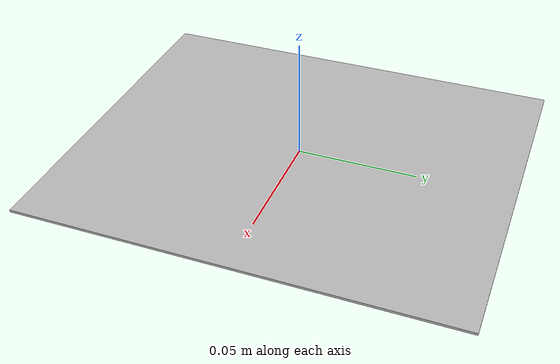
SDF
<?xml version='1.0'?>
<sdf version="1.4">
  <model name="tomato">
    <static>false</static>
    <link name="link">
      <collision name="collision">
        <geometry>
          <box>
            <size>0.15 0.18 0.001</size>
          </box>
        </geometry>
      </collision>
      <visual name="visual">
        <geometry>
          <box>
            <size>0.15 0.18 0.001</size>
          </box>
        </geometry>
        <material>
          <script>
            <uri>file://media/materials/scripts/custom.material</uri> <!-- file://models/tomato/materials/scripts/custom.material -->
            <name>Custom/Tomato</name>
          </script>
        </material>
      </visual>
    </link>
  </model>
</sdf>
